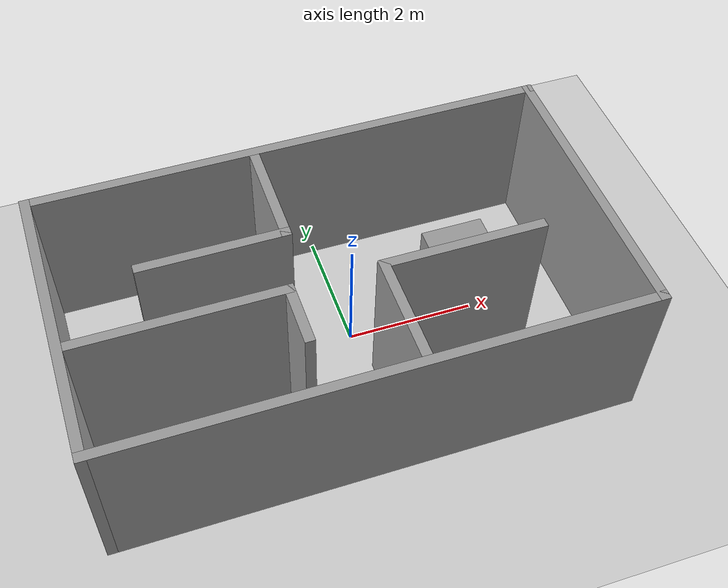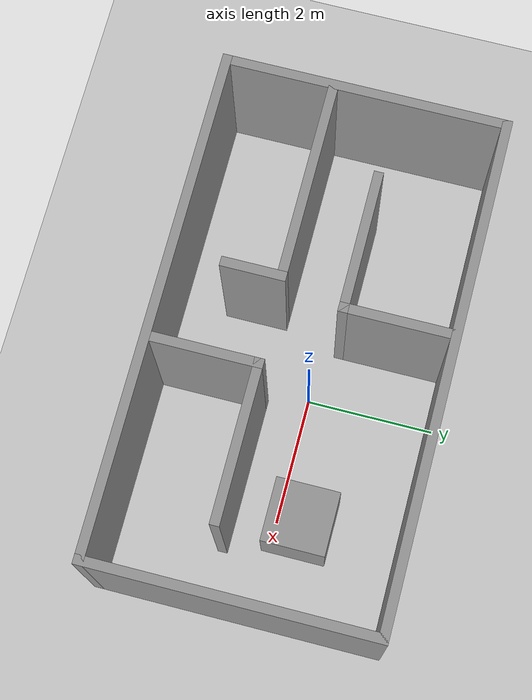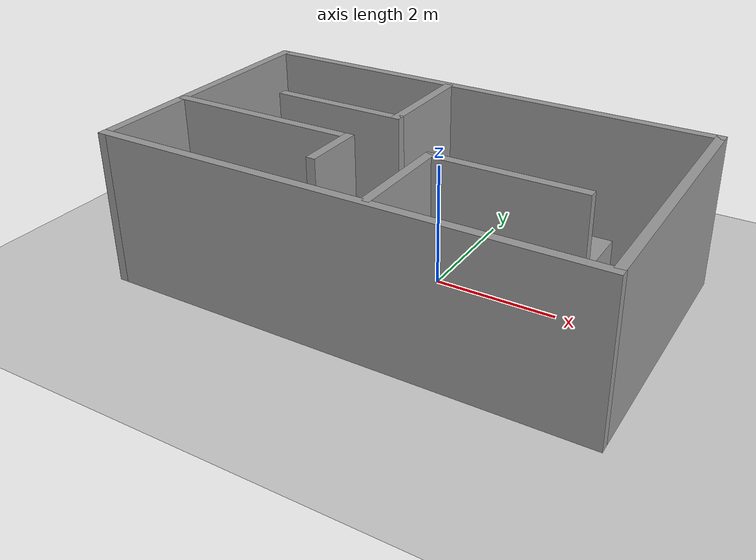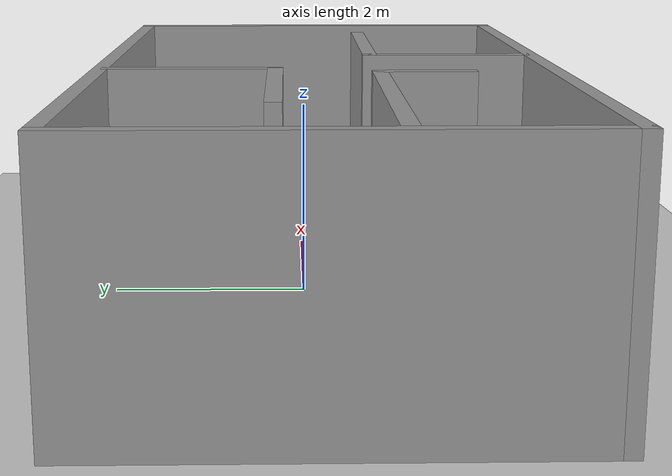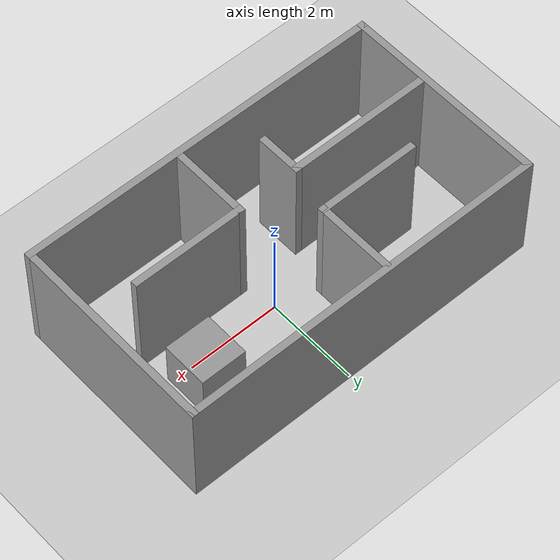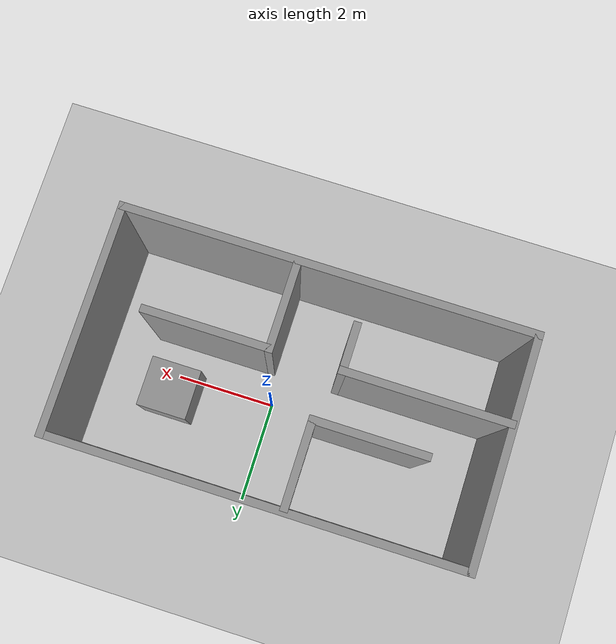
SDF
<sdf version="1.7">
 <world name="default">
  <light name="sun" type="directional">
   <pose>0 0 10 0 -0 0</pose>
   <diffuse>0.8 0.8 0.8 1</diffuse>
   <specular>0.2 0.2 0.2 1</specular>
   <attenuation>
    <range>1000</range>
    <constant>0.9</constant>
    <linear>0.01</linear>
    <quadratic>0.001</quadratic>
   </attenuation>
   <direction>-0.5 0.1 -0.9</direction>
   <spot><inner_angle>0</inner_angle><outer_angle>0</outer_angle><falloff>0</falloff></spot>
  </light>
  <model name="ground_plane">
   <static>1</static>
   <link name="link">
    <collision name="collision">
     <geometry><plane><normal>0 0 1</normal><size>100 100</size></plane></geometry>
     <surface>
      <contact><collide_bitmask>65535</collide_bitmask></contact>
      <friction><ode><mu>100</mu><mu2>50</mu2></ode></friction>
     </surface>
    </collision>
    <visual name="visual">
     <cast_shadows>0</cast_shadows>
     <geometry><plane><normal>0 0 1</normal><size>100 100</size></plane></geometry>
     <material>
      <script><uri>file://media/materials/scripts/gazebo.material</uri><name>Gazebo/Grey</name></script>
     </material>
    </visual>
   </link>
  </model>
  <gravity>0 0 -9.8</gravity>
  <magnetic_field>6e-06 2.3e-05 -4.2e-05</magnetic_field>
  <atmosphere type="adiabatic"/>
  <physics type="ode">
   <max_step_size>0.001</max_step_size>
   <real_time_factor>1</real_time_factor>
   <real_time_update_rate>1000</real_time_update_rate>
  </physics>
  <scene><ambient>0.4 0.4 0.4 1</ambient><background>0.7 0.7 0.7 1</background><shadows>1</shadows></scene>
  <audio><device>default</device></audio>
  <spherical_coordinates>
   <surface_model>EARTH_WGS84</surface_model>
   <latitude_deg>0</latitude_deg>
   <longitude_deg>0</longitude_deg>
   <elevation>0</elevation>
   <heading_deg>0</heading_deg>
  </spherical_coordinates>
  <model name="room">
   <pose>-0.3565 0.014839 0 0 -0 0</pose>
   <link name="Wall_10">
    <collision name="Wall_10_Collision">
     <geometry><box><size>8 0.15 2.5</size></box></geometry>
     <pose>0 0 1.25 0 -0 0</pose>
    </collision>
    <visual name="Wall_10_Visual">
     <pose>0 0 1.25 0 -0 0</pose>
     <geometry><box><size>8 0.15 2.5</size></box></geometry>
     <material>
      <script><uri>file://media/materials/scripts/gazebo.material</uri><name>Gazebo/Grey</name></script>
      <ambient>1 1 1 1</ambient>
     </material>
     <meta><layer>0</layer></meta>
    </visual>
    <pose>0 -2.39974 0 0 -0 3.14159</pose>
   </link>
   <link name="Wall_11">
    <collision name="Wall_11_Collision">
     <geometry><box><size>4.5 0.15 2.5</size></box></geometry>
     <pose>0 0 1.25 0 -0 0</pose>
    </collision>
    <visual name="Wall_11_Visual">
     <pose>0 0 1.25 0 -0 0</pose>
     <geometry><box><size>4.5 0.15 2.5</size></box></geometry>
     <material>
      <script><uri>file://media/materials/scripts/gazebo.material</uri><name>Gazebo/Grey</name></script>
      <ambient>1 1 1 1</ambient>
     </material>
     <meta><layer>0</layer></meta>
    </visual>
    <pose>-3.925 -0.224744 0 0 -0 1.5708</pose>
   </link>
   <link name="Wall_13">
    <collision name="Wall_13_Collision">
     <geometry><box><size>1.75 0.15 2.5</size></box></geometry>
     <pose>0 0 1.25 0 -0 0</pose>
    </collision>
    <visual name="Wall_13_Visual">
     <pose>0 0 1.25 0 -0 0</pose>
     <geometry><box><size>1.75 0.15 2.5</size></box></geometry>
     <material>
      <script><uri>file://media/materials/scripts/gazebo.material</uri><name>Gazebo/Grey</name></script>
      <ambient>1 1 1 1</ambient>
     </material>
     <meta><layer>0</layer></meta>
    </visual>
    <pose>-0.5394 1.07091 0 0 -0 -1.5708</pose>
   </link>
   <link name="Wall_14">
    <collision name="Wall_14_Collision">
     <geometry><box><size>2.25 0.15 2.5</size></box></geometry>
     <pose>0 0 1.25 0 -0 0</pose>
    </collision>
    <visual name="Wall_14_Visual">
     <pose>0 0 1.25 0 -0 0</pose>
     <geometry><box><size>2.25 0.15 2.5</size></box></geometry>
     <material>
      <script><uri>file://media/materials/scripts/gazebo.material</uri><name>Gazebo/Grey</name></script>
      <ambient>1 1 1 1</ambient>
     </material>
     <meta><layer>0</layer></meta>
    </visual>
    <pose>-1.5894 0.270905 0 0 -0 3.14159</pose>
   </link>
   <link name="Wall_16">
    <collision name="Wall_16_Collision">
     <geometry><box><size>3.25 0.15 2.5</size></box></geometry>
     <pose>0 0 1.25 0 -0 0</pose>
    </collision>
    <visual name="Wall_16_Visual">
     <pose>0 0 1.25 0 -0 0</pose>
     <geometry><box><size>3.25 0.15 2.5</size></box></geometry>
     <material>
      <script><uri>file://media/materials/scripts/gazebo.material</uri><name>Gazebo/Grey</name></script>
      <ambient>1 1 1 1</ambient>
     </material>
     <meta><layer>0</layer></meta>
    </visual>
    <pose>-2.33533 -0.721195 0 0 -0 0</pose>
   </link>
   <link name="Wall_17">
    <collision name="Wall_17_Collision">
     <geometry><box><size>1 0.15 2.5</size></box></geometry>
     <pose>0 0 1.25 0 -0 0</pose>
    </collision>
    <visual name="Wall_17_Visual">
     <pose>0 0 1.25 0 -0 0</pose>
     <geometry><box><size>1 0.15 2.5</size></box></geometry>
     <material>
      <script><uri>file://media/materials/scripts/gazebo.material</uri><name>Gazebo/Grey</name></script>
      <ambient>1 1 1 1</ambient>
     </material>
     <meta><layer>0</layer></meta>
    </visual>
    <pose>-0.785325 -1.14619 0 0 -0 -1.5708</pose>
   </link>
   <link name="Wall_19">
    <collision name="Wall_19_Collision">
     <geometry><box><size>1.75 0.15 2.5</size></box></geometry>
     <pose>0 0 1.25 0 -0 0</pose>
    </collision>
    <visual name="Wall_19_Visual">
     <pose>0 0 1.25 0 -0 0</pose>
     <geometry><box><size>1.75 0.15 2.5</size></box></geometry>
     <material>
      <script><uri>file://media/materials/scripts/gazebo.material</uri><name>Gazebo/Grey</name></script>
      <ambient>1 1 1 1</ambient>
     </material>
     <meta><layer>0</layer></meta>
    </visual>
    <pose>0.5715 -1.50819 0 0 -0 1.5708</pose>
   </link>
   <link name="Wall_20">
    <collision name="Wall_20_Collision">
     <geometry><box><size>2.5 0.15 2.5</size></box></geometry>
     <pose>0 0 1.25 0 -0 0</pose>
    </collision>
    <visual name="Wall_20_Visual">
     <pose>0 0 1.25 0 -0 0</pose>
     <geometry><box><size>2.5 0.15 2.5</size></box></geometry>
     <material>
      <script><uri>file://media/materials/scripts/gazebo.material</uri><name>Gazebo/Grey</name></script>
      <ambient>1 1 1 1</ambient>
     </material>
     <meta><layer>0</layer></meta>
    </visual>
    <pose>1.7465 -0.708194 0 0 -0 0</pose>
   </link>
   <link name="Wall_8">
    <collision name="Wall_8_Collision">
     <geometry><box><size>8 0.15 2.5</size></box></geometry>
     <pose>0 0 1.25 0 -0 0</pose>
    </collision>
    <visual name="Wall_8_Visual">
     <pose>0 0 1.25 0 -0 0</pose>
     <geometry><box><size>8 0.15 2.5</size></box></geometry>
     <material>
      <script><uri>file://media/materials/scripts/gazebo.material</uri><name>Gazebo/Grey</name></script>
      <ambient>1 1 1 1</ambient>
     </material>
     <meta><layer>0</layer></meta>
    </visual>
    <pose>0 1.95026 0 0 -0 0</pose>
   </link>
   <link name="Wall_9">
    <collision name="Wall_9_Collision">
     <geometry><box><size>4.5 0.15 2.5</size></box></geometry>
     <pose>0 0 1.25 0 -0 0</pose>
    </collision>
    <visual name="Wall_9_Visual">
     <pose>0 0 1.25 0 -0 0</pose>
     <geometry><box><size>4.5 0.15 2.5</size></box></geometry>
     <material>
      <script><uri>file://media/materials/scripts/gazebo.material</uri><name>Gazebo/Grey</name></script>
      <ambient>1 1 1 1</ambient>
     </material>
     <meta><layer>0</layer></meta>
    </visual>
    <pose>3.925 -0.224744 0 0 -0 -1.5708</pose>
   </link>
   <static>1</static>
  </model>
  <model name="unit_box">
   <pose>1.96713 0.376119 0.5 0 -0 0</pose>
   <link name="link">
    <inertial>
     <mass>1</mass>
     <inertia>
      <ixx>0.166667</ixx>
      <ixy>0</ixy>
      <ixz>0</ixz>
      <iyy>0.166667</iyy>
      <iyz>0</iyz>
      <izz>0.166667</izz>
     </inertia>
    </inertial>
    <collision name="collision"><geometry><box><size>1 1 1</size></box></geometry></collision>
    <visual name="visual">
     <geometry><box><size>1 1 1</size></box></geometry>
     <material>
      <script><name>Gazebo/Grey</name><uri>file://media/materials/scripts/gazebo.material</uri></script>
     </material>
    </visual>
   </link>
  </model>
 </world>
</sdf>
